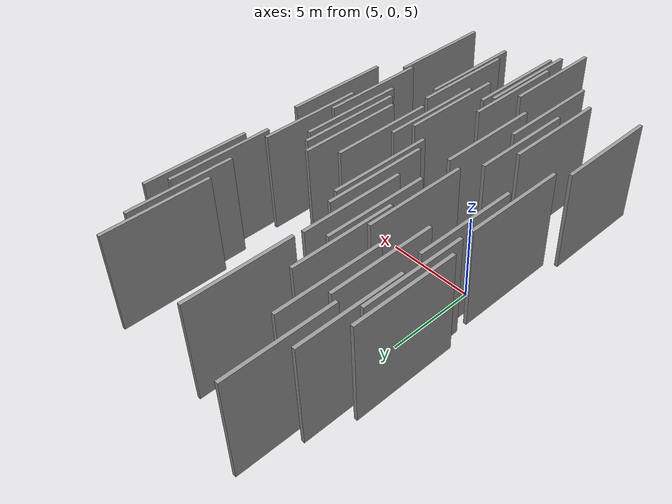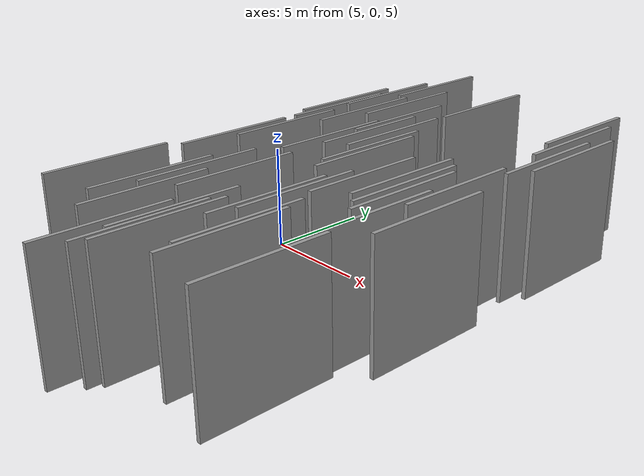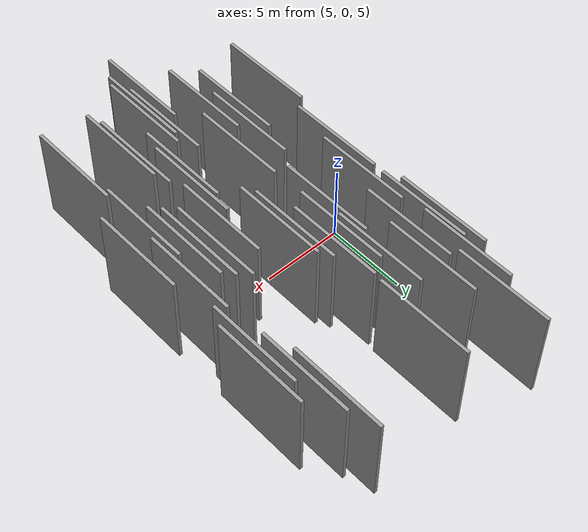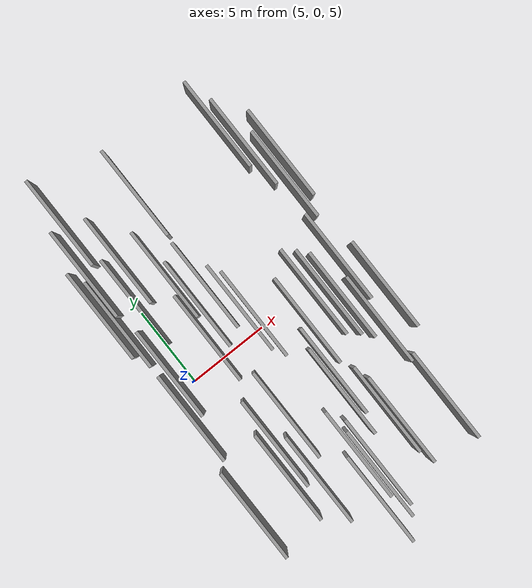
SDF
<sdf version="1.6">
 <world name="default">
  <scene>
   <sky><clouds><speed>12</speed></clouds></sky>
   <ambient>0.4 0.4 0.4 1</ambient>
   <background>0.7 0.7 0.7 1</background>
   <shadows>1</shadows>
  </scene>
  <gravity>0 0 -9.8066</gravity>
  <magnetic_field>6e-06 2.3e-05 -4.2e-05</magnetic_field>
  <physics default="0" name="default_physics" type="ode">
   <ode>
    <solver>
     <type>quick</type>
     <iters>10</iters>
     <sor>1.0</sor>
     <use_dynamic_moi_rescaling>0</use_dynamic_moi_rescaling>
    </solver>
    <constraints>
     <cfm>0</cfm>
     <erp>0.2</erp>
     <contact_max_correcting_vel>100</contact_max_correcting_vel>
     <contact_surface_layer>0.001</contact_surface_layer>
    </constraints>
   </ode>
   <max_step_size>0.004</max_step_size>
   <real_time_factor>1</real_time_factor>
   <real_time_update_rate>250</real_time_update_rate>
  </physics>
  <light name="sun" type="directional">
   <pose>0 0 10 0 0 0</pose>
   <diffuse>0.8 0.8 0.8 1</diffuse>
   <specular>0.2 0.2 0.2 1</specular>
   <attenuation>
    <range>1000</range>
    <constant>0.9</constant>
    <linear>0.01</linear>
    <quadratic>0.001</quadratic>
   </attenuation>
   <direction>-0.5 0.1 -0.9</direction>
  </light>
  <model name="grey_wall_1">
   <static>1</static>
   <pose>14.6508 -1.3126 5.0 0.000000 0.000000 1.570796</pose>
   <link name="link">
    <pose>0 0 3.00 0 0 0</pose>
    <collision name="collision"><geometry><box><size>6.00 0.2 6.00</size></box></geometry></collision>
    <visual name="visual">
     <cast_shadows>0</cast_shadows>
     <geometry><box><size>6.00 0.2 6.00</size></box></geometry>
     <material>
      <script>
       <uri>model://grey_wall/materials/scripts</uri>
       <uri>model://grey_wall/materials/textures</uri>
       <name>vrc/grey_wall</name>
      </script>
     </material>
    </visual>
   </link>
  </model>
  <model name="grey_wall_2">
   <static>1</static>
   <pose>16.8669 7.0628 5.0 0.000000 0.000000 1.570796</pose>
   <link name="link">
    <pose>0 0 3.00 0 0 0</pose>
    <collision name="collision"><geometry><box><size>6.00 0.2 6.00</size></box></geometry></collision>
    <visual name="visual">
     <cast_shadows>0</cast_shadows>
     <geometry><box><size>6.00 0.2 6.00</size></box></geometry>
     <material>
      <script>
       <uri>model://grey_wall/materials/scripts</uri>
       <uri>model://grey_wall/materials/textures</uri>
       <name>vrc/grey_wall</name>
      </script>
     </material>
    </visual>
   </link>
  </model>
  <model name="grey_wall_3">
   <static>1</static>
   <pose>9.8406 -8.8659 5.0 0.000000 0.000000 1.570796</pose>
   <link name="link">
    <pose>0 0 3.00 0 0 0</pose>
    <collision name="collision"><geometry><box><size>6.00 0.2 6.00</size></box></geometry></collision>
    <visual name="visual">
     <cast_shadows>0</cast_shadows>
     <geometry><box><size>6.00 0.2 6.00</size></box></geometry>
     <material>
      <script>
       <uri>model://grey_wall/materials/scripts</uri>
       <uri>model://grey_wall/materials/textures</uri>
       <name>vrc/grey_wall</name>
      </script>
     </material>
    </visual>
   </link>
  </model>
  <model name="grey_wall_4">
   <static>1</static>
   <pose>5.9714 7.9466 5.0 0.000000 0.000000 1.570796</pose>
   <link name="link">
    <pose>0 0 3.00 0 0 0</pose>
    <collision name="collision"><geometry><box><size>6.00 0.2 6.00</size></box></geometry></collision>
    <visual name="visual">
     <cast_shadows>0</cast_shadows>
     <geometry><box><size>6.00 0.2 6.00</size></box></geometry>
     <material>
      <script>
       <uri>model://grey_wall/materials/scripts</uri>
       <uri>model://grey_wall/materials/textures</uri>
       <name>vrc/grey_wall</name>
      </script>
     </material>
    </visual>
   </link>
  </model>
  <model name="grey_wall_5">
   <static>1</static>
   <pose>7.5330 5.7304 5.0 0.000000 0.000000 1.570796</pose>
   <link name="link">
    <pose>0 0 3.00 0 0 0</pose>
    <collision name="collision"><geometry><box><size>6.00 0.2 6.00</size></box></geometry></collision>
    <visual name="visual">
     <cast_shadows>0</cast_shadows>
     <geometry><box><size>6.00 0.2 6.00</size></box></geometry>
     <material>
      <script>
       <uri>model://grey_wall/materials/scripts</uri>
       <uri>model://grey_wall/materials/textures</uri>
       <name>vrc/grey_wall</name>
      </script>
     </material>
    </visual>
   </link>
  </model>
  <model name="grey_wall_6">
   <static>1</static>
   <pose>5.2382 5.5553 5.0 0.000000 0.000000 1.570796</pose>
   <link name="link">
    <pose>0 0 3.00 0 0 0</pose>
    <collision name="collision"><geometry><box><size>6.00 0.2 6.00</size></box></geometry></collision>
    <visual name="visual">
     <cast_shadows>0</cast_shadows>
     <geometry><box><size>6.00 0.2 6.00</size></box></geometry>
     <material>
      <script>
       <uri>model://grey_wall/materials/scripts</uri>
       <uri>model://grey_wall/materials/textures</uri>
       <name>vrc/grey_wall</name>
      </script>
     </material>
    </visual>
   </link>
  </model>
  <model name="grey_wall_7">
   <static>1</static>
   <pose>3.7517 5.1453 5.0 0.000000 0.000000 1.570796</pose>
   <link name="link">
    <pose>0 0 3.00 0 0 0</pose>
    <collision name="collision"><geometry><box><size>6.00 0.2 6.00</size></box></geometry></collision>
    <visual name="visual">
     <cast_shadows>0</cast_shadows>
     <geometry><box><size>6.00 0.2 6.00</size></box></geometry>
     <material>
      <script>
       <uri>model://grey_wall/materials/scripts</uri>
       <uri>model://grey_wall/materials/textures</uri>
       <name>vrc/grey_wall</name>
      </script>
     </material>
    </visual>
   </link>
  </model>
  <model name="grey_wall_8">
   <static>1</static>
   <pose>4.7043 11.6171 5.0 0.000000 0.000000 1.570796</pose>
   <link name="link">
    <pose>0 0 3.00 0 0 0</pose>
    <collision name="collision"><geometry><box><size>6.00 0.2 6.00</size></box></geometry></collision>
    <visual name="visual">
     <cast_shadows>0</cast_shadows>
     <geometry><box><size>6.00 0.2 6.00</size></box></geometry>
     <material>
      <script>
       <uri>model://grey_wall/materials/scripts</uri>
       <uri>model://grey_wall/materials/textures</uri>
       <name>vrc/grey_wall</name>
      </script>
     </material>
    </visual>
   </link>
  </model>
  <model name="grey_wall_9">
   <static>1</static>
   <pose>11.3034 -5.5310 5.0 0.000000 0.000000 1.570796</pose>
   <link name="link">
    <pose>0 0 3.00 0 0 0</pose>
    <collision name="collision"><geometry><box><size>6.00 0.2 6.00</size></box></geometry></collision>
    <visual name="visual">
     <cast_shadows>0</cast_shadows>
     <geometry><box><size>6.00 0.2 6.00</size></box></geometry>
     <material>
      <script>
       <uri>model://grey_wall/materials/scripts</uri>
       <uri>model://grey_wall/materials/textures</uri>
       <name>vrc/grey_wall</name>
      </script>
     </material>
    </visual>
   </link>
  </model>
  <model name="grey_wall_10">
   <static>1</static>
   <pose>9.0481 10.3323 5.0 0.000000 0.000000 1.570796</pose>
   <link name="link">
    <pose>0 0 3.00 0 0 0</pose>
    <collision name="collision"><geometry><box><size>6.00 0.2 6.00</size></box></geometry></collision>
    <visual name="visual">
     <cast_shadows>0</cast_shadows>
     <geometry><box><size>6.00 0.2 6.00</size></box></geometry>
     <material>
      <script>
       <uri>model://grey_wall/materials/scripts</uri>
       <uri>model://grey_wall/materials/textures</uri>
       <name>vrc/grey_wall</name>
      </script>
     </material>
    </visual>
   </link>
  </model>
  <model name="grey_wall_11">
   <static>1</static>
   <pose>10.1104 -10.4616 5.0 0.000000 0.000000 1.570796</pose>
   <link name="link">
    <pose>0 0 3.00 0 0 0</pose>
    <collision name="collision"><geometry><box><size>6.00 0.2 6.00</size></box></geometry></collision>
    <visual name="visual">
     <cast_shadows>0</cast_shadows>
     <geometry><box><size>6.00 0.2 6.00</size></box></geometry>
     <material>
      <script>
       <uri>model://grey_wall/materials/scripts</uri>
       <uri>model://grey_wall/materials/textures</uri>
       <name>vrc/grey_wall</name>
      </script>
     </material>
    </visual>
   </link>
  </model>
  <model name="grey_wall_12">
   <static>1</static>
   <pose>12.2276 -1.2199 5.0 0.000000 0.000000 1.570796</pose>
   <link name="link">
    <pose>0 0 3.00 0 0 0</pose>
    <collision name="collision"><geometry><box><size>6.00 0.2 6.00</size></box></geometry></collision>
    <visual name="visual">
     <cast_shadows>0</cast_shadows>
     <geometry><box><size>6.00 0.2 6.00</size></box></geometry>
     <material>
      <script>
       <uri>model://grey_wall/materials/scripts</uri>
       <uri>model://grey_wall/materials/textures</uri>
       <name>vrc/grey_wall</name>
      </script>
     </material>
    </visual>
   </link>
  </model>
  <model name="grey_wall_13">
   <static>1</static>
   <pose>10.4377 -9.8905 5.0 0.000000 0.000000 1.570796</pose>
   <link name="link">
    <pose>0 0 3.00 0 0 0</pose>
    <collision name="collision"><geometry><box><size>6.00 0.2 6.00</size></box></geometry></collision>
    <visual name="visual">
     <cast_shadows>0</cast_shadows>
     <geometry><box><size>6.00 0.2 6.00</size></box></geometry>
     <material>
      <script>
       <uri>model://grey_wall/materials/scripts</uri>
       <uri>model://grey_wall/materials/textures</uri>
       <name>vrc/grey_wall</name>
      </script>
     </material>
    </visual>
   </link>
  </model>
  <model name="grey_wall_14">
   <static>1</static>
   <pose>15.6064 8.8356 5.0 0.000000 0.000000 1.570796</pose>
   <link name="link">
    <pose>0 0 3.00 0 0 0</pose>
    <collision name="collision"><geometry><box><size>6.00 0.2 6.00</size></box></geometry></collision>
    <visual name="visual">
     <cast_shadows>0</cast_shadows>
     <geometry><box><size>6.00 0.2 6.00</size></box></geometry>
     <material>
      <script>
       <uri>model://grey_wall/materials/scripts</uri>
       <uri>model://grey_wall/materials/textures</uri>
       <name>vrc/grey_wall</name>
      </script>
     </material>
    </visual>
   </link>
  </model>
  <model name="grey_wall_15">
   <static>1</static>
   <pose>15.4497 -3.6546 5.0 0.000000 0.000000 1.570796</pose>
   <link name="link">
    <pose>0 0 3.00 0 0 0</pose>
    <collision name="collision"><geometry><box><size>6.00 0.2 6.00</size></box></geometry></collision>
    <visual name="visual">
     <cast_shadows>0</cast_shadows>
     <geometry><box><size>6.00 0.2 6.00</size></box></geometry>
     <material>
      <script>
       <uri>model://grey_wall/materials/scripts</uri>
       <uri>model://grey_wall/materials/textures</uri>
       <name>vrc/grey_wall</name>
      </script>
     </material>
    </visual>
   </link>
  </model>
  <model name="grey_wall_16">
   <static>1</static>
   <pose>9.2563 -11.5913 5.0 0.000000 0.000000 1.570796</pose>
   <link name="link">
    <pose>0 0 3.00 0 0 0</pose>
    <collision name="collision"><geometry><box><size>6.00 0.2 6.00</size></box></geometry></collision>
    <visual name="visual">
     <cast_shadows>0</cast_shadows>
     <geometry><box><size>6.00 0.2 6.00</size></box></geometry>
     <material>
      <script>
       <uri>model://grey_wall/materials/scripts</uri>
       <uri>model://grey_wall/materials/textures</uri>
       <name>vrc/grey_wall</name>
      </script>
     </material>
    </visual>
   </link>
  </model>
  <model name="grey_wall_17">
   <static>1</static>
   <pose>15.0598 10.5077 5.0 0.000000 0.000000 1.570796</pose>
   <link name="link">
    <pose>0 0 3.00 0 0 0</pose>
    <collision name="collision"><geometry><box><size>6.00 0.2 6.00</size></box></geometry></collision>
    <visual name="visual">
     <cast_shadows>0</cast_shadows>
     <geometry><box><size>6.00 0.2 6.00</size></box></geometry>
     <material>
      <script>
       <uri>model://grey_wall/materials/scripts</uri>
       <uri>model://grey_wall/materials/textures</uri>
       <name>vrc/grey_wall</name>
      </script>
     </material>
    </visual>
   </link>
  </model>
  <model name="grey_wall_18">
   <static>1</static>
   <pose>9.7028 1.6760 5.0 0.000000 0.000000 1.570796</pose>
   <link name="link">
    <pose>0 0 3.00 0 0 0</pose>
    <collision name="collision"><geometry><box><size>6.00 0.2 6.00</size></box></geometry></collision>
    <visual name="visual">
     <cast_shadows>0</cast_shadows>
     <geometry><box><size>6.00 0.2 6.00</size></box></geometry>
     <material>
      <script>
       <uri>model://grey_wall/materials/scripts</uri>
       <uri>model://grey_wall/materials/textures</uri>
       <name>vrc/grey_wall</name>
      </script>
     </material>
    </visual>
   </link>
  </model>
  <model name="grey_wall_19">
   <static>1</static>
   <pose>16.8991 -2.3008 5.0 0.000000 0.000000 1.570796</pose>
   <link name="link">
    <pose>0 0 3.00 0 0 0</pose>
    <collision name="collision"><geometry><box><size>6.00 0.2 6.00</size></box></geometry></collision>
    <visual name="visual">
     <cast_shadows>0</cast_shadows>
     <geometry><box><size>6.00 0.2 6.00</size></box></geometry>
     <material>
      <script>
       <uri>model://grey_wall/materials/scripts</uri>
       <uri>model://grey_wall/materials/textures</uri>
       <name>vrc/grey_wall</name>
      </script>
     </material>
    </visual>
   </link>
  </model>
  <model name="grey_wall_20">
   <static>1</static>
   <pose>12.6463 -7.8847 5.0 0.000000 0.000000 1.570796</pose>
   <link name="link">
    <pose>0 0 3.00 0 0 0</pose>
    <collision name="collision"><geometry><box><size>6.00 0.2 6.00</size></box></geometry></collision>
    <visual name="visual">
     <cast_shadows>0</cast_shadows>
     <geometry><box><size>6.00 0.2 6.00</size></box></geometry>
     <material>
      <script>
       <uri>model://grey_wall/materials/scripts</uri>
       <uri>model://grey_wall/materials/textures</uri>
       <name>vrc/grey_wall</name>
      </script>
     </material>
    </visual>
   </link>
  </model>
  <model name="grey_wall_21">
   <static>1</static>
   <pose>3.1263 -7.9421 5.0 0.000000 0.000000 1.570796</pose>
   <link name="link">
    <pose>0 0 3.00 0 0 0</pose>
    <collision name="collision"><geometry><box><size>6.00 0.2 6.00</size></box></geometry></collision>
    <visual name="visual">
     <cast_shadows>0</cast_shadows>
     <geometry><box><size>6.00 0.2 6.00</size></box></geometry>
     <material>
      <script>
       <uri>model://grey_wall/materials/scripts</uri>
       <uri>model://grey_wall/materials/textures</uri>
       <name>vrc/grey_wall</name>
      </script>
     </material>
    </visual>
   </link>
  </model>
  <model name="grey_wall_22">
   <static>1</static>
   <pose>12.9280 -8.8337 5.0 0.000000 0.000000 1.570796</pose>
   <link name="link">
    <pose>0 0 3.00 0 0 0</pose>
    <collision name="collision"><geometry><box><size>6.00 0.2 6.00</size></box></geometry></collision>
    <visual name="visual">
     <cast_shadows>0</cast_shadows>
     <geometry><box><size>6.00 0.2 6.00</size></box></geometry>
     <material>
      <script>
       <uri>model://grey_wall/materials/scripts</uri>
       <uri>model://grey_wall/materials/textures</uri>
       <name>vrc/grey_wall</name>
      </script>
     </material>
    </visual>
   </link>
  </model>
  <model name="grey_wall_23">
   <static>1</static>
   <pose>8.9529 3.8747 5.0 0.000000 0.000000 1.570796</pose>
   <link name="link">
    <pose>0 0 3.00 0 0 0</pose>
    <collision name="collision"><geometry><box><size>6.00 0.2 6.00</size></box></geometry></collision>
    <visual name="visual">
     <cast_shadows>0</cast_shadows>
     <geometry><box><size>6.00 0.2 6.00</size></box></geometry>
     <material>
      <script>
       <uri>model://grey_wall/materials/scripts</uri>
       <uri>model://grey_wall/materials/textures</uri>
       <name>vrc/grey_wall</name>
      </script>
     </material>
    </visual>
   </link>
  </model>
  <model name="grey_wall_24">
   <static>1</static>
   <pose>5.9491 -7.4492 5.0 0.000000 0.000000 1.570796</pose>
   <link name="link">
    <pose>0 0 3.00 0 0 0</pose>
    <collision name="collision"><geometry><box><size>6.00 0.2 6.00</size></box></geometry></collision>
    <visual name="visual">
     <cast_shadows>0</cast_shadows>
     <geometry><box><size>6.00 0.2 6.00</size></box></geometry>
     <material>
      <script>
       <uri>model://grey_wall/materials/scripts</uri>
       <uri>model://grey_wall/materials/textures</uri>
       <name>vrc/grey_wall</name>
      </script>
     </material>
    </visual>
   </link>
  </model>
  <model name="grey_wall_25">
   <static>1</static>
   <pose>6.5377 -5.5196 5.0 0.000000 0.000000 1.570796</pose>
   <link name="link">
    <pose>0 0 3.00 0 0 0</pose>
    <collision name="collision"><geometry><box><size>6.00 0.2 6.00</size></box></geometry></collision>
    <visual name="visual">
     <cast_shadows>0</cast_shadows>
     <geometry><box><size>6.00 0.2 6.00</size></box></geometry>
     <material>
      <script>
       <uri>model://grey_wall/materials/scripts</uri>
       <uri>model://grey_wall/materials/textures</uri>
       <name>vrc/grey_wall</name>
      </script>
     </material>
    </visual>
   </link>
  </model>
  <model name="grey_wall_26">
   <static>1</static>
   <pose>7.9653 3.3056 5.0 0.000000 0.000000 1.570796</pose>
   <link name="link">
    <pose>0 0 3.00 0 0 0</pose>
    <collision name="collision"><geometry><box><size>6.00 0.2 6.00</size></box></geometry></collision>
    <visual name="visual">
     <cast_shadows>0</cast_shadows>
     <geometry><box><size>6.00 0.2 6.00</size></box></geometry>
     <material>
      <script>
       <uri>model://grey_wall/materials/scripts</uri>
       <uri>model://grey_wall/materials/textures</uri>
       <name>vrc/grey_wall</name>
      </script>
     </material>
    </visual>
   </link>
  </model>
  <model name="grey_wall_27">
   <static>1</static>
   <pose>13.4966 -0.1819 5.0 0.000000 0.000000 1.570796</pose>
   <link name="link">
    <pose>0 0 3.00 0 0 0</pose>
    <collision name="collision"><geometry><box><size>6.00 0.2 6.00</size></box></geometry></collision>
    <visual name="visual">
     <cast_shadows>0</cast_shadows>
     <geometry><box><size>6.00 0.2 6.00</size></box></geometry>
     <material>
      <script>
       <uri>model://grey_wall/materials/scripts</uri>
       <uri>model://grey_wall/materials/textures</uri>
       <name>vrc/grey_wall</name>
      </script>
     </material>
    </visual>
   </link>
  </model>
  <model name="grey_wall_28">
   <static>1</static>
   <pose>11.6434 -4.3331 5.0 0.000000 0.000000 1.570796</pose>
   <link name="link">
    <pose>0 0 3.00 0 0 0</pose>
    <collision name="collision"><geometry><box><size>6.00 0.2 6.00</size></box></geometry></collision>
    <visual name="visual">
     <cast_shadows>0</cast_shadows>
     <geometry><box><size>6.00 0.2 6.00</size></box></geometry>
     <material>
      <script>
       <uri>model://grey_wall/materials/scripts</uri>
       <uri>model://grey_wall/materials/textures</uri>
       <name>vrc/grey_wall</name>
      </script>
     </material>
    </visual>
   </link>
  </model>
  <model name="grey_wall_29">
   <static>1</static>
   <pose>7.2350 -8.5971 5.0 0.000000 0.000000 1.570796</pose>
   <link name="link">
    <pose>0 0 3.00 0 0 0</pose>
    <collision name="collision"><geometry><box><size>6.00 0.2 6.00</size></box></geometry></collision>
    <visual name="visual">
     <cast_shadows>0</cast_shadows>
     <geometry><box><size>6.00 0.2 6.00</size></box></geometry>
     <material>
      <script>
       <uri>model://grey_wall/materials/scripts</uri>
       <uri>model://grey_wall/materials/textures</uri>
       <name>vrc/grey_wall</name>
      </script>
     </material>
    </visual>
   </link>
  </model>
  <model name="grey_wall_30">
   <static>1</static>
   <pose>15.7237 -9.2830 5.0 0.000000 0.000000 1.570796</pose>
   <link name="link">
    <pose>0 0 3.00 0 0 0</pose>
    <collision name="collision"><geometry><box><size>6.00 0.2 6.00</size></box></geometry></collision>
    <visual name="visual">
     <cast_shadows>0</cast_shadows>
     <geometry><box><size>6.00 0.2 6.00</size></box></geometry>
     <material>
      <script>
       <uri>model://grey_wall/materials/scripts</uri>
       <uri>model://grey_wall/materials/textures</uri>
       <name>vrc/grey_wall</name>
      </script>
     </material>
    </visual>
   </link>
  </model>
  <model name="grey_wall_31">
   <static>1</static>
   <pose>10.1138 0.9330 5.0 0.000000 0.000000 1.570796</pose>
   <link name="link">
    <pose>0 0 3.00 0 0 0</pose>
    <collision name="collision"><geometry><box><size>6.00 0.2 6.00</size></box></geometry></collision>
    <visual name="visual">
     <cast_shadows>0</cast_shadows>
     <geometry><box><size>6.00 0.2 6.00</size></box></geometry>
     <material>
      <script>
       <uri>model://grey_wall/materials/scripts</uri>
       <uri>model://grey_wall/materials/textures</uri>
       <name>vrc/grey_wall</name>
      </script>
     </material>
    </visual>
   </link>
  </model>
  <model name="grey_wall_32">
   <static>1</static>
   <pose>3.7301 -1.5100 5.0 0.000000 0.000000 1.570796</pose>
   <link name="link">
    <pose>0 0 3.00 0 0 0</pose>
    <collision name="collision"><geometry><box><size>6.00 0.2 6.00</size></box></geometry></collision>
    <visual name="visual">
     <cast_shadows>0</cast_shadows>
     <geometry><box><size>6.00 0.2 6.00</size></box></geometry>
     <material>
      <script>
       <uri>model://grey_wall/materials/scripts</uri>
       <uri>model://grey_wall/materials/textures</uri>
       <name>vrc/grey_wall</name>
      </script>
     </material>
    </visual>
   </link>
  </model>
  <model name="grey_wall_33">
   <static>1</static>
   <pose>8.0347 -4.6547 5.0 0.000000 0.000000 1.570796</pose>
   <link name="link">
    <pose>0 0 3.00 0 0 0</pose>
    <collision name="collision"><geometry><box><size>6.00 0.2 6.00</size></box></geometry></collision>
    <visual name="visual">
     <cast_shadows>0</cast_shadows>
     <geometry><box><size>6.00 0.2 6.00</size></box></geometry>
     <material>
      <script>
       <uri>model://grey_wall/materials/scripts</uri>
       <uri>model://grey_wall/materials/textures</uri>
       <name>vrc/grey_wall</name>
      </script>
     </material>
    </visual>
   </link>
  </model>
  <model name="grey_wall_34">
   <static>1</static>
   <pose>7.2315 1.4747 5.0 0.000000 0.000000 1.570796</pose>
   <link name="link">
    <pose>0 0 3.00 0 0 0</pose>
    <collision name="collision"><geometry><box><size>6.00 0.2 6.00</size></box></geometry></collision>
    <visual name="visual">
     <cast_shadows>0</cast_shadows>
     <geometry><box><size>6.00 0.2 6.00</size></box></geometry>
     <material>
      <script>
       <uri>model://grey_wall/materials/scripts</uri>
       <uri>model://grey_wall/materials/textures</uri>
       <name>vrc/grey_wall</name>
      </script>
     </material>
    </visual>
   </link>
  </model>
  <model name="grey_wall_35">
   <static>1</static>
   <pose>14.1454 -0.7212 5.0 0.000000 0.000000 1.570796</pose>
   <link name="link">
    <pose>0 0 3.00 0 0 0</pose>
    <collision name="collision"><geometry><box><size>6.00 0.2 6.00</size></box></geometry></collision>
    <visual name="visual">
     <cast_shadows>0</cast_shadows>
     <geometry><box><size>6.00 0.2 6.00</size></box></geometry>
     <material>
      <script>
       <uri>model://grey_wall/materials/scripts</uri>
       <uri>model://grey_wall/materials/textures</uri>
       <name>vrc/grey_wall</name>
      </script>
     </material>
    </visual>
   </link>
  </model>
  <model name="grey_wall_36">
   <static>1</static>
   <pose>16.2975 6.0035 5.0 0.000000 0.000000 1.570796</pose>
   <link name="link">
    <pose>0 0 3.00 0 0 0</pose>
    <collision name="collision"><geometry><box><size>6.00 0.2 6.00</size></box></geometry></collision>
    <visual name="visual">
     <cast_shadows>0</cast_shadows>
     <geometry><box><size>6.00 0.2 6.00</size></box></geometry>
     <material>
      <script>
       <uri>model://grey_wall/materials/scripts</uri>
       <uri>model://grey_wall/materials/textures</uri>
       <name>vrc/grey_wall</name>
      </script>
     </material>
    </visual>
   </link>
  </model>
  <model name="grey_wall_37">
   <static>1</static>
   <pose>3.2741 6.1240 5.0 0.000000 0.000000 1.570796</pose>
   <link name="link">
    <pose>0 0 3.00 0 0 0</pose>
    <collision name="collision"><geometry><box><size>6.00 0.2 6.00</size></box></geometry></collision>
    <visual name="visual">
     <cast_shadows>0</cast_shadows>
     <geometry><box><size>6.00 0.2 6.00</size></box></geometry>
     <material>
      <script>
       <uri>model://grey_wall/materials/scripts</uri>
       <uri>model://grey_wall/materials/textures</uri>
       <name>vrc/grey_wall</name>
      </script>
     </material>
    </visual>
   </link>
  </model>
  <model name="grey_wall_38">
   <static>1</static>
   <pose>3.9980 8.5221 5.0 0.000000 0.000000 1.570796</pose>
   <link name="link">
    <pose>0 0 3.00 0 0 0</pose>
    <collision name="collision"><geometry><box><size>6.00 0.2 6.00</size></box></geometry></collision>
    <visual name="visual">
     <cast_shadows>0</cast_shadows>
     <geometry><box><size>6.00 0.2 6.00</size></box></geometry>
     <material>
      <script>
       <uri>model://grey_wall/materials/scripts</uri>
       <uri>model://grey_wall/materials/textures</uri>
       <name>vrc/grey_wall</name>
      </script>
     </material>
    </visual>
   </link>
  </model>
  <model name="grey_wall_39">
   <static>1</static>
   <pose>4.3209 1.1896 5.0 0.000000 0.000000 1.570796</pose>
   <link name="link">
    <pose>0 0 3.00 0 0 0</pose>
    <collision name="collision"><geometry><box><size>6.00 0.2 6.00</size></box></geometry></collision>
    <visual name="visual">
     <cast_shadows>0</cast_shadows>
     <geometry><box><size>6.00 0.2 6.00</size></box></geometry>
     <material>
      <script>
       <uri>model://grey_wall/materials/scripts</uri>
       <uri>model://grey_wall/materials/textures</uri>
       <name>vrc/grey_wall</name>
      </script>
     </material>
    </visual>
   </link>
  </model>
  <model name="grey_wall_40">
   <static>1</static>
   <pose>15.8174 0.5283 5.0 0.000000 0.000000 1.570796</pose>
   <link name="link">
    <pose>0 0 3.00 0 0 0</pose>
    <collision name="collision"><geometry><box><size>6.00 0.2 6.00</size></box></geometry></collision>
    <visual name="visual">
     <cast_shadows>0</cast_shadows>
     <geometry><box><size>6.00 0.2 6.00</size></box></geometry>
     <material>
      <script>
       <uri>model://grey_wall/materials/scripts</uri>
       <uri>model://grey_wall/materials/textures</uri>
       <name>vrc/grey_wall</name>
      </script>
     </material>
    </visual>
   </link>
  </model>
 </world>
</sdf>
